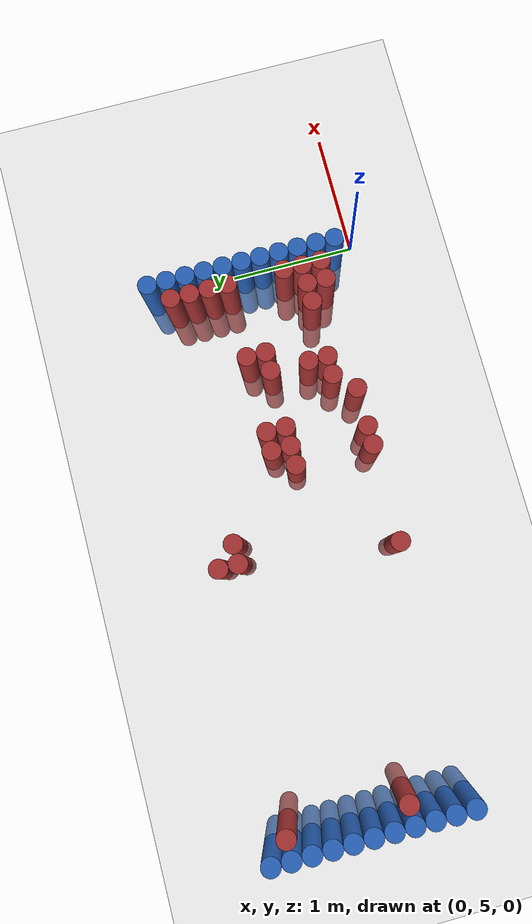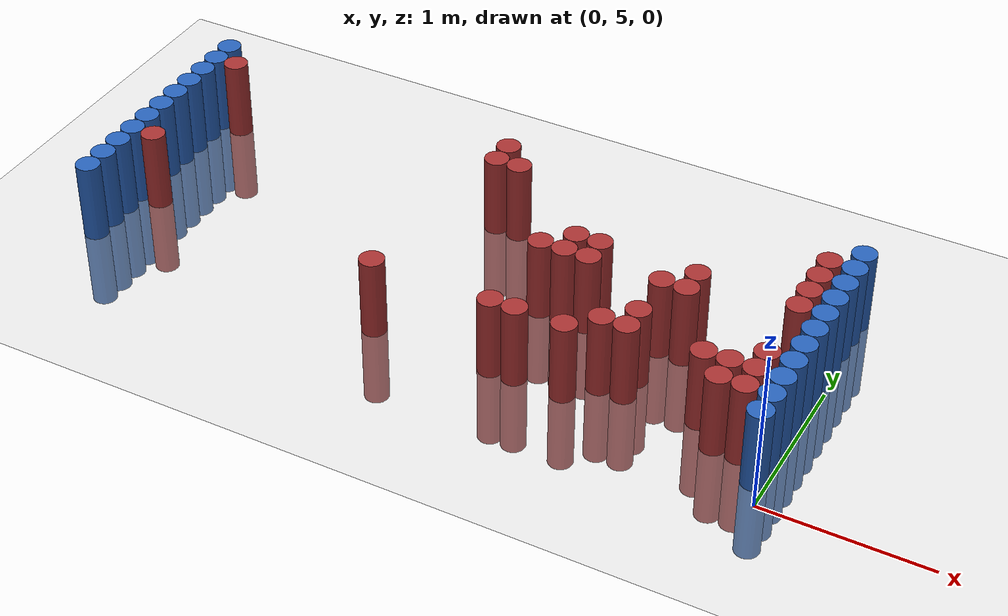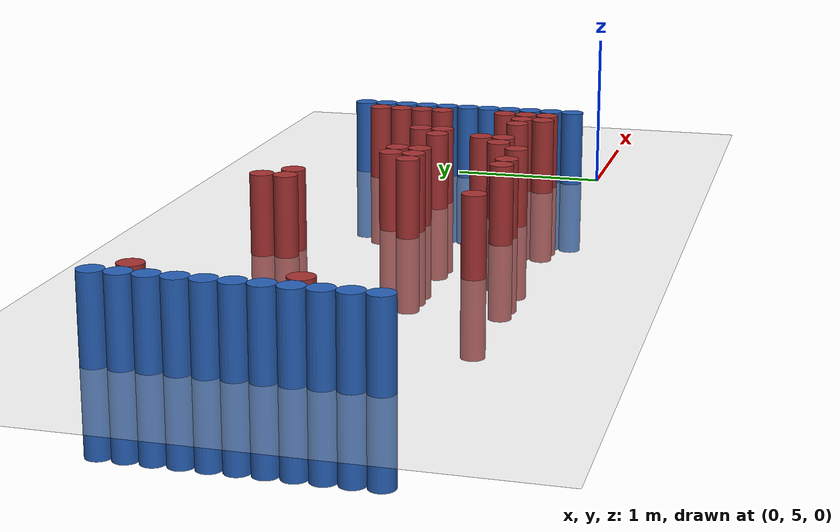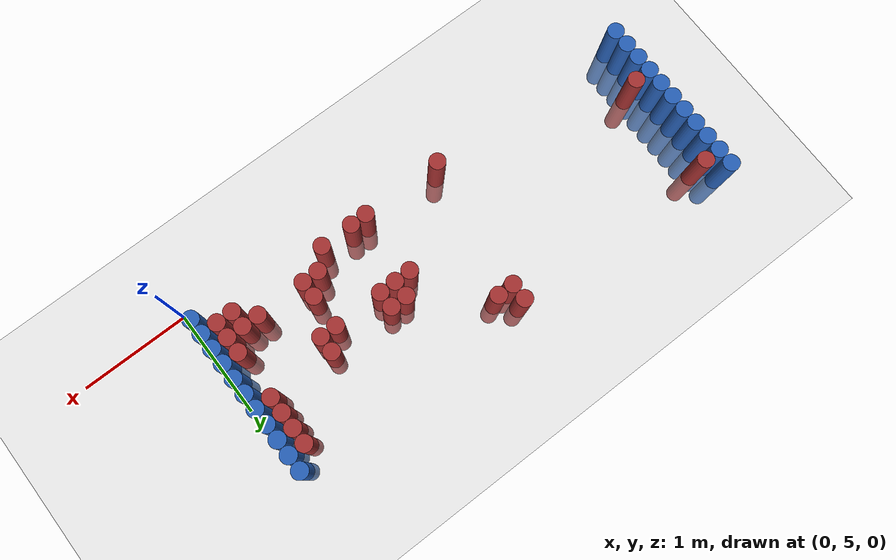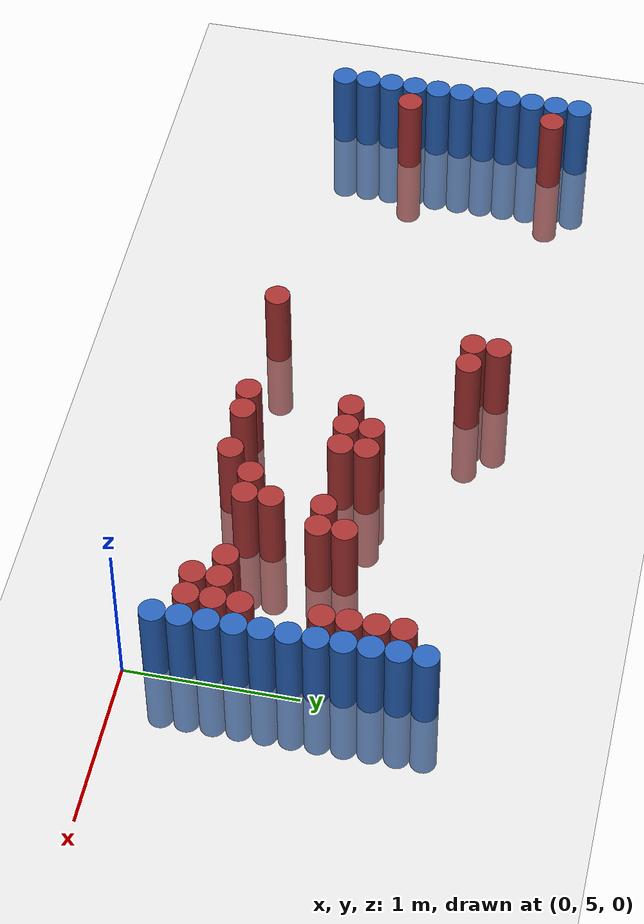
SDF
<sdf version="1.6">
 <world name="default">
  <model name="ground_plane">
   <static>1</static>
   <link name="link">
    <collision name="collision">
     <geometry><plane><normal>0 0 1</normal><size>100 100</size></plane></geometry>
     <surface><friction><ode><mu>100</mu><mu2>50</mu2></ode></friction></surface>
    </collision>
    <visual name="visual">
     <cast_shadows>0</cast_shadows>
     <geometry><plane><normal>0 0 1</normal><size>100 100</size></plane></geometry>
     <material>
      <script><uri>file://media/materials/scripts/gazebo.material</uri><name>Gazebo/Grey</name></script>
     </material>
    </visual>
   </link>
  </model>
  <model name="unit_cylinder_97">
   <static>1</static>
   <pose>-4.425000 5.325000 0.000000 0.000000 0.000000 0.000000</pose>
   <link name="link">
    <inertial>
     <mass>1</mass>
     <inertia><ixx>0.145833</ixx><ixy>0</ixy><ixz>0</ixz><iyy>0.145833</iyy><iyz>0</iyz><izz>0.125</izz></inertia>
    </inertial>
    <collision name="collision">
     <geometry><cylinder><radius>0.075000</radius><length>1</length></cylinder></geometry>
    </collision>
    <visual name="visual">
     <geometry><cylinder><radius>0.075000</radius><length>1</length></cylinder></geometry>
     <material>
      <ambient>0.152000 0.379000 0.720000 1</ambient>
      <diffuse>0.152000 0.379000 0.720000 1</diffuse>
     </material>
     <material>
      <script><name>Gazebo/Grey</name><uri>file://media/materials/scripts/gazebo.material</uri></script>
     </material>
    </visual>
   </link>
  </model>
  <model name="unit_cylinder_98">
   <static>1</static>
   <pose>-4.425000 5.475000 0.000000 0.000000 0.000000 0.000000</pose>
   <link name="link">
    <inertial>
     <mass>1</mass>
     <inertia><ixx>0.145833</ixx><ixy>0</ixy><ixz>0</ixz><iyy>0.145833</iyy><iyz>0</iyz><izz>0.125</izz></inertia>
    </inertial>
    <collision name="collision">
     <geometry><cylinder><radius>0.075000</radius><length>1</length></cylinder></geometry>
    </collision>
    <visual name="visual">
     <geometry><cylinder><radius>0.075000</radius><length>1</length></cylinder></geometry>
     <material>
      <ambient>0.152000 0.379000 0.720000 1</ambient>
      <diffuse>0.152000 0.379000 0.720000 1</diffuse>
     </material>
     <material>
      <script><name>Gazebo/Grey</name><uri>file://media/materials/scripts/gazebo.material</uri></script>
     </material>
    </visual>
   </link>
  </model>
  <model name="unit_cylinder_99">
   <static>1</static>
   <pose>-4.425000 5.625000 0.000000 0.000000 0.000000 0.000000</pose>
   <link name="link">
    <inertial>
     <mass>1</mass>
     <inertia><ixx>0.145833</ixx><ixy>0</ixy><ixz>0</ixz><iyy>0.145833</iyy><iyz>0</iyz><izz>0.125</izz></inertia>
    </inertial>
    <collision name="collision">
     <geometry><cylinder><radius>0.075000</radius><length>1</length></cylinder></geometry>
    </collision>
    <visual name="visual">
     <geometry><cylinder><radius>0.075000</radius><length>1</length></cylinder></geometry>
     <material>
      <ambient>0.152000 0.379000 0.720000 1</ambient>
      <diffuse>0.152000 0.379000 0.720000 1</diffuse>
     </material>
     <material>
      <script><name>Gazebo/Grey</name><uri>file://media/materials/scripts/gazebo.material</uri></script>
     </material>
    </visual>
   </link>
  </model>
  <model name="unit_cylinder_100">
   <static>1</static>
   <pose>-4.425000 5.775000 0.000000 0.000000 0.000000 0.000000</pose>
   <link name="link">
    <inertial>
     <mass>1</mass>
     <inertia><ixx>0.145833</ixx><ixy>0</ixy><ixz>0</ixz><iyy>0.145833</iyy><iyz>0</iyz><izz>0.125</izz></inertia>
    </inertial>
    <collision name="collision">
     <geometry><cylinder><radius>0.075000</radius><length>1</length></cylinder></geometry>
    </collision>
    <visual name="visual">
     <geometry><cylinder><radius>0.075000</radius><length>1</length></cylinder></geometry>
     <material>
      <ambient>0.152000 0.379000 0.720000 1</ambient>
      <diffuse>0.152000 0.379000 0.720000 1</diffuse>
     </material>
     <material>
      <script><name>Gazebo/Grey</name><uri>file://media/materials/scripts/gazebo.material</uri></script>
     </material>
    </visual>
   </link>
  </model>
  <model name="unit_cylinder_101">
   <static>1</static>
   <pose>-4.425000 5.925000 0.000000 0.000000 0.000000 0.000000</pose>
   <link name="link">
    <inertial>
     <mass>1</mass>
     <inertia><ixx>0.145833</ixx><ixy>0</ixy><ixz>0</ixz><iyy>0.145833</iyy><iyz>0</iyz><izz>0.125</izz></inertia>
    </inertial>
    <collision name="collision">
     <geometry><cylinder><radius>0.075000</radius><length>1</length></cylinder></geometry>
    </collision>
    <visual name="visual">
     <geometry><cylinder><radius>0.075000</radius><length>1</length></cylinder></geometry>
     <material>
      <ambient>0.152000 0.379000 0.720000 1</ambient>
      <diffuse>0.152000 0.379000 0.720000 1</diffuse>
     </material>
     <material>
      <script><name>Gazebo/Grey</name><uri>file://media/materials/scripts/gazebo.material</uri></script>
     </material>
    </visual>
   </link>
  </model>
  <model name="unit_cylinder_102">
   <static>1</static>
   <pose>-4.425000 6.075000 0.000000 0.000000 0.000000 0.000000</pose>
   <link name="link">
    <inertial>
     <mass>1</mass>
     <inertia><ixx>0.145833</ixx><ixy>0</ixy><ixz>0</ixz><iyy>0.145833</iyy><iyz>0</iyz><izz>0.125</izz></inertia>
    </inertial>
    <collision name="collision">
     <geometry><cylinder><radius>0.075000</radius><length>1</length></cylinder></geometry>
    </collision>
    <visual name="visual">
     <geometry><cylinder><radius>0.075000</radius><length>1</length></cylinder></geometry>
     <material>
      <ambient>0.152000 0.379000 0.720000 1</ambient>
      <diffuse>0.152000 0.379000 0.720000 1</diffuse>
     </material>
     <material>
      <script><name>Gazebo/Grey</name><uri>file://media/materials/scripts/gazebo.material</uri></script>
     </material>
    </visual>
   </link>
  </model>
  <model name="unit_cylinder_103">
   <static>1</static>
   <pose>-4.425000 6.225000 0.000000 0.000000 0.000000 0.000000</pose>
   <link name="link">
    <inertial>
     <mass>1</mass>
     <inertia><ixx>0.145833</ixx><ixy>0</ixy><ixz>0</ixz><iyy>0.145833</iyy><iyz>0</iyz><izz>0.125</izz></inertia>
    </inertial>
    <collision name="collision">
     <geometry><cylinder><radius>0.075000</radius><length>1</length></cylinder></geometry>
    </collision>
    <visual name="visual">
     <geometry><cylinder><radius>0.075000</radius><length>1</length></cylinder></geometry>
     <material>
      <ambient>0.152000 0.379000 0.720000 1</ambient>
      <diffuse>0.152000 0.379000 0.720000 1</diffuse>
     </material>
     <material>
      <script><name>Gazebo/Grey</name><uri>file://media/materials/scripts/gazebo.material</uri></script>
     </material>
    </visual>
   </link>
  </model>
  <model name="unit_cylinder_104">
   <static>1</static>
   <pose>-4.425000 6.375000 0.000000 0.000000 0.000000 0.000000</pose>
   <link name="link">
    <inertial>
     <mass>1</mass>
     <inertia><ixx>0.145833</ixx><ixy>0</ixy><ixz>0</ixz><iyy>0.145833</iyy><iyz>0</iyz><izz>0.125</izz></inertia>
    </inertial>
    <collision name="collision">
     <geometry><cylinder><radius>0.075000</radius><length>1</length></cylinder></geometry>
    </collision>
    <visual name="visual">
     <geometry><cylinder><radius>0.075000</radius><length>1</length></cylinder></geometry>
     <material>
      <ambient>0.152000 0.379000 0.720000 1</ambient>
      <diffuse>0.152000 0.379000 0.720000 1</diffuse>
     </material>
     <material>
      <script><name>Gazebo/Grey</name><uri>file://media/materials/scripts/gazebo.material</uri></script>
     </material>
    </visual>
   </link>
  </model>
  <model name="unit_cylinder_105">
   <static>1</static>
   <pose>-4.425000 6.525000 0.000000 0.000000 0.000000 0.000000</pose>
   <link name="link">
    <inertial>
     <mass>1</mass>
     <inertia><ixx>0.145833</ixx><ixy>0</ixy><ixz>0</ixz><iyy>0.145833</iyy><iyz>0</iyz><izz>0.125</izz></inertia>
    </inertial>
    <collision name="collision">
     <geometry><cylinder><radius>0.075000</radius><length>1</length></cylinder></geometry>
    </collision>
    <visual name="visual">
     <geometry><cylinder><radius>0.075000</radius><length>1</length></cylinder></geometry>
     <material>
      <ambient>0.152000 0.379000 0.720000 1</ambient>
      <diffuse>0.152000 0.379000 0.720000 1</diffuse>
     </material>
     <material>
      <script><name>Gazebo/Grey</name><uri>file://media/materials/scripts/gazebo.material</uri></script>
     </material>
    </visual>
   </link>
  </model>
  <model name="unit_cylinder_106">
   <static>1</static>
   <pose>-4.425000 6.675000 0.000000 0.000000 0.000000 0.000000</pose>
   <link name="link">
    <inertial>
     <mass>1</mass>
     <inertia><ixx>0.145833</ixx><ixy>0</ixy><ixz>0</ixz><iyy>0.145833</iyy><iyz>0</iyz><izz>0.125</izz></inertia>
    </inertial>
    <collision name="collision">
     <geometry><cylinder><radius>0.075000</radius><length>1</length></cylinder></geometry>
    </collision>
    <visual name="visual">
     <geometry><cylinder><radius>0.075000</radius><length>1</length></cylinder></geometry>
     <material>
      <ambient>0.152000 0.379000 0.720000 1</ambient>
      <diffuse>0.152000 0.379000 0.720000 1</diffuse>
     </material>
     <material>
      <script><name>Gazebo/Grey</name><uri>file://media/materials/scripts/gazebo.material</uri></script>
     </material>
    </visual>
   </link>
  </model>
  <model name="unit_cylinder_107">
   <static>1</static>
   <pose>-4.425000 6.825000 0.000000 0.000000 0.000000 0.000000</pose>
   <link name="link">
    <inertial>
     <mass>1</mass>
     <inertia><ixx>0.145833</ixx><ixy>0</ixy><ixz>0</ixz><iyy>0.145833</iyy><iyz>0</iyz><izz>0.125</izz></inertia>
    </inertial>
    <collision name="collision">
     <geometry><cylinder><radius>0.075000</radius><length>1</length></cylinder></geometry>
    </collision>
    <visual name="visual">
     <geometry><cylinder><radius>0.075000</radius><length>1</length></cylinder></geometry>
     <material>
      <ambient>0.152000 0.379000 0.720000 1</ambient>
      <diffuse>0.152000 0.379000 0.720000 1</diffuse>
     </material>
     <material>
      <script><name>Gazebo/Grey</name><uri>file://media/materials/scripts/gazebo.material</uri></script>
     </material>
    </visual>
   </link>
  </model>
  <model name="unit_cylinder_127">
   <static>1</static>
   <pose>-4.275000 5.775000 0.000000 0.000000 0.000000 0.000000</pose>
   <link name="link">
    <inertial>
     <mass>1</mass>
     <inertia><ixx>0.145833</ixx><ixy>0</ixy><ixz>0</ixz><iyy>0.145833</iyy><iyz>0</iyz><izz>0.125</izz></inertia>
    </inertial>
    <collision name="collision">
     <geometry><cylinder><radius>0.075000</radius><length>1</length></cylinder></geometry>
    </collision>
    <visual name="visual">
     <geometry><cylinder><radius>0.075000</radius><length>1</length></cylinder></geometry>
     <material>
      <ambient>0.648000 0.192000 0.192000 1</ambient>
      <diffuse>0.648000 0.192000 0.192000 1</diffuse>
     </material>
     <material>
      <script><name>Gazebo/Grey</name><uri>file://media/materials/scripts/gazebo.material</uri></script>
     </material>
    </visual>
   </link>
  </model>
  <model name="unit_cylinder_128">
   <static>1</static>
   <pose>-4.275000 6.675000 0.000000 0.000000 0.000000 0.000000</pose>
   <link name="link">
    <inertial>
     <mass>1</mass>
     <inertia><ixx>0.145833</ixx><ixy>0</ixy><ixz>0</ixz><iyy>0.145833</iyy><iyz>0</iyz><izz>0.125</izz></inertia>
    </inertial>
    <collision name="collision">
     <geometry><cylinder><radius>0.075000</radius><length>1</length></cylinder></geometry>
    </collision>
    <visual name="visual">
     <geometry><cylinder><radius>0.075000</radius><length>1</length></cylinder></geometry>
     <material>
      <ambient>0.648000 0.192000 0.192000 1</ambient>
      <diffuse>0.648000 0.192000 0.192000 1</diffuse>
     </material>
     <material>
      <script><name>Gazebo/Grey</name><uri>file://media/materials/scripts/gazebo.material</uri></script>
     </material>
    </visual>
   </link>
  </model>
  <model name="unit_cylinder_164">
   <static>1</static>
   <pose>-2.475000 5.325000 0.000000 0.000000 0.000000 0.000000</pose>
   <link name="link">
    <inertial>
     <mass>1</mass>
     <inertia><ixx>0.145833</ixx><ixy>0</ixy><ixz>0</ixz><iyy>0.145833</iyy><iyz>0</iyz><izz>0.125</izz></inertia>
    </inertial>
    <collision name="collision">
     <geometry><cylinder><radius>0.075000</radius><length>1</length></cylinder></geometry>
    </collision>
    <visual name="visual">
     <geometry><cylinder><radius>0.075000</radius><length>1</length></cylinder></geometry>
     <material>
      <ambient>0.648000 0.192000 0.192000 1</ambient>
      <diffuse>0.648000 0.192000 0.192000 1</diffuse>
     </material>
     <material>
      <script><name>Gazebo/Grey</name><uri>file://media/materials/scripts/gazebo.material</uri></script>
     </material>
    </visual>
   </link>
  </model>
  <model name="unit_cylinder_166">
   <static>1</static>
   <pose>-2.325000 6.525000 0.000000 0.000000 0.000000 0.000000</pose>
   <link name="link">
    <inertial>
     <mass>1</mass>
     <inertia><ixx>0.145833</ixx><ixy>0</ixy><ixz>0</ixz><iyy>0.145833</iyy><iyz>0</iyz><izz>0.125</izz></inertia>
    </inertial>
    <collision name="collision">
     <geometry><cylinder><radius>0.075000</radius><length>1</length></cylinder></geometry>
    </collision>
    <visual name="visual">
     <geometry><cylinder><radius>0.075000</radius><length>1</length></cylinder></geometry>
     <material>
      <ambient>0.648000 0.192000 0.192000 1</ambient>
      <diffuse>0.648000 0.192000 0.192000 1</diffuse>
     </material>
     <material>
      <script><name>Gazebo/Grey</name><uri>file://media/materials/scripts/gazebo.material</uri></script>
     </material>
    </visual>
   </link>
  </model>
  <model name="unit_cylinder_167">
   <static>1</static>
   <pose>-2.325000 6.675000 0.000000 0.000000 0.000000 0.000000</pose>
   <link name="link">
    <inertial>
     <mass>1</mass>
     <inertia><ixx>0.145833</ixx><ixy>0</ixy><ixz>0</ixz><iyy>0.145833</iyy><iyz>0</iyz><izz>0.125</izz></inertia>
    </inertial>
    <collision name="collision">
     <geometry><cylinder><radius>0.075000</radius><length>1</length></cylinder></geometry>
    </collision>
    <visual name="visual">
     <geometry><cylinder><radius>0.075000</radius><length>1</length></cylinder></geometry>
     <material>
      <ambient>0.648000 0.192000 0.192000 1</ambient>
      <diffuse>0.648000 0.192000 0.192000 1</diffuse>
     </material>
     <material>
      <script><name>Gazebo/Grey</name><uri>file://media/materials/scripts/gazebo.material</uri></script>
     </material>
    </visual>
   </link>
  </model>
  <model name="unit_cylinder_168">
   <static>1</static>
   <pose>-2.175000 6.525000 0.000000 0.000000 0.000000 0.000000</pose>
   <link name="link">
    <inertial>
     <mass>1</mass>
     <inertia><ixx>0.145833</ixx><ixy>0</ixy><ixz>0</ixz><iyy>0.145833</iyy><iyz>0</iyz><izz>0.125</izz></inertia>
    </inertial>
    <collision name="collision">
     <geometry><cylinder><radius>0.075000</radius><length>1</length></cylinder></geometry>
    </collision>
    <visual name="visual">
     <geometry><cylinder><radius>0.075000</radius><length>1</length></cylinder></geometry>
     <material>
      <ambient>0.648000 0.192000 0.192000 1</ambient>
      <diffuse>0.648000 0.192000 0.192000 1</diffuse>
     </material>
     <material>
      <script><name>Gazebo/Grey</name><uri>file://media/materials/scripts/gazebo.material</uri></script>
     </material>
    </visual>
   </link>
  </model>
  <model name="unit_cylinder_176">
   <static>1</static>
   <pose>-1.725000 5.325000 0.000000 0.000000 0.000000 0.000000</pose>
   <link name="link">
    <inertial>
     <mass>1</mass>
     <inertia><ixx>0.145833</ixx><ixy>0</ixy><ixz>0</ixz><iyy>0.145833</iyy><iyz>0</iyz><izz>0.125</izz></inertia>
    </inertial>
    <collision name="collision">
     <geometry><cylinder><radius>0.075000</radius><length>1</length></cylinder></geometry>
    </collision>
    <visual name="visual">
     <geometry><cylinder><radius>0.075000</radius><length>1</length></cylinder></geometry>
     <material>
      <ambient>0.648000 0.192000 0.192000 1</ambient>
      <diffuse>0.648000 0.192000 0.192000 1</diffuse>
     </material>
     <material>
      <script><name>Gazebo/Grey</name><uri>file://media/materials/scripts/gazebo.material</uri></script>
     </material>
    </visual>
   </link>
  </model>
  <model name="unit_cylinder_177">
   <static>1</static>
   <pose>-1.725000 5.925000 0.000000 0.000000 0.000000 0.000000</pose>
   <link name="link">
    <inertial>
     <mass>1</mass>
     <inertia><ixx>0.145833</ixx><ixy>0</ixy><ixz>0</ixz><iyy>0.145833</iyy><iyz>0</iyz><izz>0.125</izz></inertia>
    </inertial>
    <collision name="collision">
     <geometry><cylinder><radius>0.075000</radius><length>1</length></cylinder></geometry>
    </collision>
    <visual name="visual">
     <geometry><cylinder><radius>0.075000</radius><length>1</length></cylinder></geometry>
     <material>
      <ambient>0.648000 0.192000 0.192000 1</ambient>
      <diffuse>0.648000 0.192000 0.192000 1</diffuse>
     </material>
     <material>
      <script><name>Gazebo/Grey</name><uri>file://media/materials/scripts/gazebo.material</uri></script>
     </material>
    </visual>
   </link>
  </model>
  <model name="unit_cylinder_181">
   <static>1</static>
   <pose>-1.575000 5.325000 0.000000 0.000000 0.000000 0.000000</pose>
   <link name="link">
    <inertial>
     <mass>1</mass>
     <inertia><ixx>0.145833</ixx><ixy>0</ixy><ixz>0</ixz><iyy>0.145833</iyy><iyz>0</iyz><izz>0.125</izz></inertia>
    </inertial>
    <collision name="collision">
     <geometry><cylinder><radius>0.075000</radius><length>1</length></cylinder></geometry>
    </collision>
    <visual name="visual">
     <geometry><cylinder><radius>0.075000</radius><length>1</length></cylinder></geometry>
     <material>
      <ambient>0.648000 0.192000 0.192000 1</ambient>
      <diffuse>0.648000 0.192000 0.192000 1</diffuse>
     </material>
     <material>
      <script><name>Gazebo/Grey</name><uri>file://media/materials/scripts/gazebo.material</uri></script>
     </material>
    </visual>
   </link>
  </model>
  <model name="unit_cylinder_182">
   <static>1</static>
   <pose>-1.575000 5.925000 0.000000 0.000000 0.000000 0.000000</pose>
   <link name="link">
    <inertial>
     <mass>1</mass>
     <inertia><ixx>0.145833</ixx><ixy>0</ixy><ixz>0</ixz><iyy>0.145833</iyy><iyz>0</iyz><izz>0.125</izz></inertia>
    </inertial>
    <collision name="collision">
     <geometry><cylinder><radius>0.075000</radius><length>1</length></cylinder></geometry>
    </collision>
    <visual name="visual">
     <geometry><cylinder><radius>0.075000</radius><length>1</length></cylinder></geometry>
     <material>
      <ambient>0.648000 0.192000 0.192000 1</ambient>
      <diffuse>0.648000 0.192000 0.192000 1</diffuse>
     </material>
     <material>
      <script><name>Gazebo/Grey</name><uri>file://media/materials/scripts/gazebo.material</uri></script>
     </material>
    </visual>
   </link>
  </model>
  <model name="unit_cylinder_183">
   <static>1</static>
   <pose>-1.575000 6.075000 0.000000 0.000000 0.000000 0.000000</pose>
   <link name="link">
    <inertial>
     <mass>1</mass>
     <inertia><ixx>0.145833</ixx><ixy>0</ixy><ixz>0</ixz><iyy>0.145833</iyy><iyz>0</iyz><izz>0.125</izz></inertia>
    </inertial>
    <collision name="collision">
     <geometry><cylinder><radius>0.075000</radius><length>1</length></cylinder></geometry>
    </collision>
    <visual name="visual">
     <geometry><cylinder><radius>0.075000</radius><length>1</length></cylinder></geometry>
     <material>
      <ambient>0.648000 0.192000 0.192000 1</ambient>
      <diffuse>0.648000 0.192000 0.192000 1</diffuse>
     </material>
     <material>
      <script><name>Gazebo/Grey</name><uri>file://media/materials/scripts/gazebo.material</uri></script>
     </material>
    </visual>
   </link>
  </model>
  <model name="unit_cylinder_188">
   <static>1</static>
   <pose>-1.425000 5.925000 0.000000 0.000000 0.000000 0.000000</pose>
   <link name="link">
    <inertial>
     <mass>1</mass>
     <inertia><ixx>0.145833</ixx><ixy>0</ixy><ixz>0</ixz><iyy>0.145833</iyy><iyz>0</iyz><izz>0.125</izz></inertia>
    </inertial>
    <collision name="collision">
     <geometry><cylinder><radius>0.075000</radius><length>1</length></cylinder></geometry>
    </collision>
    <visual name="visual">
     <geometry><cylinder><radius>0.075000</radius><length>1</length></cylinder></geometry>
     <material>
      <ambient>0.648000 0.192000 0.192000 1</ambient>
      <diffuse>0.648000 0.192000 0.192000 1</diffuse>
     </material>
     <material>
      <script><name>Gazebo/Grey</name><uri>file://media/materials/scripts/gazebo.material</uri></script>
     </material>
    </visual>
   </link>
  </model>
  <model name="unit_cylinder_189">
   <static>1</static>
   <pose>-1.425000 6.075000 0.000000 0.000000 0.000000 0.000000</pose>
   <link name="link">
    <inertial>
     <mass>1</mass>
     <inertia><ixx>0.145833</ixx><ixy>0</ixy><ixz>0</ixz><iyy>0.145833</iyy><iyz>0</iyz><izz>0.125</izz></inertia>
    </inertial>
    <collision name="collision">
     <geometry><cylinder><radius>0.075000</radius><length>1</length></cylinder></geometry>
    </collision>
    <visual name="visual">
     <geometry><cylinder><radius>0.075000</radius><length>1</length></cylinder></geometry>
     <material>
      <ambient>0.648000 0.192000 0.192000 1</ambient>
      <diffuse>0.648000 0.192000 0.192000 1</diffuse>
     </material>
     <material>
      <script><name>Gazebo/Grey</name><uri>file://media/materials/scripts/gazebo.material</uri></script>
     </material>
    </visual>
   </link>
  </model>
  <model name="unit_cylinder_192">
   <static>1</static>
   <pose>-1.275000 5.325000 0.000000 0.000000 0.000000 0.000000</pose>
   <link name="link">
    <inertial>
     <mass>1</mass>
     <inertia><ixx>0.145833</ixx><ixy>0</ixy><ixz>0</ixz><iyy>0.145833</iyy><iyz>0</iyz><izz>0.125</izz></inertia>
    </inertial>
    <collision name="collision">
     <geometry><cylinder><radius>0.075000</radius><length>1</length></cylinder></geometry>
    </collision>
    <visual name="visual">
     <geometry><cylinder><radius>0.075000</radius><length>1</length></cylinder></geometry>
     <material>
      <ambient>0.648000 0.192000 0.192000 1</ambient>
      <diffuse>0.648000 0.192000 0.192000 1</diffuse>
     </material>
     <material>
      <script><name>Gazebo/Grey</name><uri>file://media/materials/scripts/gazebo.material</uri></script>
     </material>
    </visual>
   </link>
  </model>
  <model name="unit_cylinder_195">
   <static>1</static>
   <pose>-1.125000 5.475000 0.000000 0.000000 0.000000 0.000000</pose>
   <link name="link">
    <inertial>
     <mass>1</mass>
     <inertia><ixx>0.145833</ixx><ixy>0</ixy><ixz>0</ixz><iyy>0.145833</iyy><iyz>0</iyz><izz>0.125</izz></inertia>
    </inertial>
    <collision name="collision">
     <geometry><cylinder><radius>0.075000</radius><length>1</length></cylinder></geometry>
    </collision>
    <visual name="visual">
     <geometry><cylinder><radius>0.075000</radius><length>1</length></cylinder></geometry>
     <material>
      <ambient>0.648000 0.192000 0.192000 1</ambient>
      <diffuse>0.648000 0.192000 0.192000 1</diffuse>
     </material>
     <material>
      <script><name>Gazebo/Grey</name><uri>file://media/materials/scripts/gazebo.material</uri></script>
     </material>
    </visual>
   </link>
  </model>
  <model name="unit_cylinder_197">
   <static>1</static>
   <pose>-0.975000 5.475000 0.000000 0.000000 0.000000 0.000000</pose>
   <link name="link">
    <inertial>
     <mass>1</mass>
     <inertia><ixx>0.145833</ixx><ixy>0</ixy><ixz>0</ixz><iyy>0.145833</iyy><iyz>0</iyz><izz>0.125</izz></inertia>
    </inertial>
    <collision name="collision">
     <geometry><cylinder><radius>0.075000</radius><length>1</length></cylinder></geometry>
    </collision>
    <visual name="visual">
     <geometry><cylinder><radius>0.075000</radius><length>1</length></cylinder></geometry>
     <material>
      <ambient>0.648000 0.192000 0.192000 1</ambient>
      <diffuse>0.648000 0.192000 0.192000 1</diffuse>
     </material>
     <material>
      <script><name>Gazebo/Grey</name><uri>file://media/materials/scripts/gazebo.material</uri></script>
     </material>
    </visual>
   </link>
  </model>
  <model name="unit_cylinder_198">
   <static>1</static>
   <pose>-0.975000 5.625000 0.000000 0.000000 0.000000 0.000000</pose>
   <link name="link">
    <inertial>
     <mass>1</mass>
     <inertia><ixx>0.145833</ixx><ixy>0</ixy><ixz>0</ixz><iyy>0.145833</iyy><iyz>0</iyz><izz>0.125</izz></inertia>
    </inertial>
    <collision name="collision">
     <geometry><cylinder><radius>0.075000</radius><length>1</length></cylinder></geometry>
    </collision>
    <visual name="visual">
     <geometry><cylinder><radius>0.075000</radius><length>1</length></cylinder></geometry>
     <material>
      <ambient>0.648000 0.192000 0.192000 1</ambient>
      <diffuse>0.648000 0.192000 0.192000 1</diffuse>
     </material>
     <material>
      <script><name>Gazebo/Grey</name><uri>file://media/materials/scripts/gazebo.material</uri></script>
     </material>
    </visual>
   </link>
  </model>
  <model name="unit_cylinder_199">
   <static>1</static>
   <pose>-0.975000 5.925000 0.000000 0.000000 0.000000 0.000000</pose>
   <link name="link">
    <inertial>
     <mass>1</mass>
     <inertia><ixx>0.145833</ixx><ixy>0</ixy><ixz>0</ixz><iyy>0.145833</iyy><iyz>0</iyz><izz>0.125</izz></inertia>
    </inertial>
    <collision name="collision">
     <geometry><cylinder><radius>0.075000</radius><length>1</length></cylinder></geometry>
    </collision>
    <visual name="visual">
     <geometry><cylinder><radius>0.075000</radius><length>1</length></cylinder></geometry>
     <material>
      <ambient>0.648000 0.192000 0.192000 1</ambient>
      <diffuse>0.648000 0.192000 0.192000 1</diffuse>
     </material>
     <material>
      <script><name>Gazebo/Grey</name><uri>file://media/materials/scripts/gazebo.material</uri></script>
     </material>
    </visual>
   </link>
  </model>
  <model name="unit_cylinder_200">
   <static>1</static>
   <pose>-0.825000 5.925000 0.000000 0.000000 0.000000 0.000000</pose>
   <link name="link">
    <inertial>
     <mass>1</mass>
     <inertia><ixx>0.145833</ixx><ixy>0</ixy><ixz>0</ixz><iyy>0.145833</iyy><iyz>0</iyz><izz>0.125</izz></inertia>
    </inertial>
    <collision name="collision">
     <geometry><cylinder><radius>0.075000</radius><length>1</length></cylinder></geometry>
    </collision>
    <visual name="visual">
     <geometry><cylinder><radius>0.075000</radius><length>1</length></cylinder></geometry>
     <material>
      <ambient>0.648000 0.192000 0.192000 1</ambient>
      <diffuse>0.648000 0.192000 0.192000 1</diffuse>
     </material>
     <material>
      <script><name>Gazebo/Grey</name><uri>file://media/materials/scripts/gazebo.material</uri></script>
     </material>
    </visual>
   </link>
  </model>
  <model name="unit_cylinder_201">
   <static>1</static>
   <pose>-0.825000 6.075000 0.000000 0.000000 0.000000 0.000000</pose>
   <link name="link">
    <inertial>
     <mass>1</mass>
     <inertia><ixx>0.145833</ixx><ixy>0</ixy><ixz>0</ixz><iyy>0.145833</iyy><iyz>0</iyz><izz>0.125</izz></inertia>
    </inertial>
    <collision name="collision">
     <geometry><cylinder><radius>0.075000</radius><length>1</length></cylinder></geometry>
    </collision>
    <visual name="visual">
     <geometry><cylinder><radius>0.075000</radius><length>1</length></cylinder></geometry>
     <material>
      <ambient>0.648000 0.192000 0.192000 1</ambient>
      <diffuse>0.648000 0.192000 0.192000 1</diffuse>
     </material>
     <material>
      <script><name>Gazebo/Grey</name><uri>file://media/materials/scripts/gazebo.material</uri></script>
     </material>
    </visual>
   </link>
  </model>
  <model name="unit_cylinder_205">
   <static>1</static>
   <pose>-0.525000 5.475000 0.000000 0.000000 0.000000 0.000000</pose>
   <link name="link">
    <inertial>
     <mass>1</mass>
     <inertia><ixx>0.145833</ixx><ixy>0</ixy><ixz>0</ixz><iyy>0.145833</iyy><iyz>0</iyz><izz>0.125</izz></inertia>
    </inertial>
    <collision name="collision">
     <geometry><cylinder><radius>0.075000</radius><length>1</length></cylinder></geometry>
    </collision>
    <visual name="visual">
     <geometry><cylinder><radius>0.075000</radius><length>1</length></cylinder></geometry>
     <material>
      <ambient>0.648000 0.192000 0.192000 1</ambient>
      <diffuse>0.648000 0.192000 0.192000 1</diffuse>
     </material>
     <material>
      <script><name>Gazebo/Grey</name><uri>file://media/materials/scripts/gazebo.material</uri></script>
     </material>
    </visual>
   </link>
  </model>
  <model name="unit_cylinder_207">
   <static>1</static>
   <pose>-0.375000 5.325000 0.000000 0.000000 0.000000 0.000000</pose>
   <link name="link">
    <inertial>
     <mass>1</mass>
     <inertia><ixx>0.145833</ixx><ixy>0</ixy><ixz>0</ixz><iyy>0.145833</iyy><iyz>0</iyz><izz>0.125</izz></inertia>
    </inertial>
    <collision name="collision">
     <geometry><cylinder><radius>0.075000</radius><length>1</length></cylinder></geometry>
    </collision>
    <visual name="visual">
     <geometry><cylinder><radius>0.075000</radius><length>1</length></cylinder></geometry>
     <material>
      <ambient>0.648000 0.192000 0.192000 1</ambient>
      <diffuse>0.648000 0.192000 0.192000 1</diffuse>
     </material>
     <material>
      <script><name>Gazebo/Grey</name><uri>file://media/materials/scripts/gazebo.material</uri></script>
     </material>
    </visual>
   </link>
  </model>
  <model name="unit_cylinder_208">
   <static>1</static>
   <pose>-0.375000 5.475000 0.000000 0.000000 0.000000 0.000000</pose>
   <link name="link">
    <inertial>
     <mass>1</mass>
     <inertia><ixx>0.145833</ixx><ixy>0</ixy><ixz>0</ixz><iyy>0.145833</iyy><iyz>0</iyz><izz>0.125</izz></inertia>
    </inertial>
    <collision name="collision">
     <geometry><cylinder><radius>0.075000</radius><length>1</length></cylinder></geometry>
    </collision>
    <visual name="visual">
     <geometry><cylinder><radius>0.075000</radius><length>1</length></cylinder></geometry>
     <material>
      <ambient>0.648000 0.192000 0.192000 1</ambient>
      <diffuse>0.648000 0.192000 0.192000 1</diffuse>
     </material>
     <material>
      <script><name>Gazebo/Grey</name><uri>file://media/materials/scripts/gazebo.material</uri></script>
     </material>
    </visual>
   </link>
  </model>
  <model name="unit_cylinder_213">
   <static>1</static>
   <pose>-0.225000 5.325000 0.000000 0.000000 0.000000 0.000000</pose>
   <link name="link">
    <inertial>
     <mass>1</mass>
     <inertia><ixx>0.145833</ixx><ixy>0</ixy><ixz>0</ixz><iyy>0.145833</iyy><iyz>0</iyz><izz>0.125</izz></inertia>
    </inertial>
    <collision name="collision">
     <geometry><cylinder><radius>0.075000</radius><length>1</length></cylinder></geometry>
    </collision>
    <visual name="visual">
     <geometry><cylinder><radius>0.075000</radius><length>1</length></cylinder></geometry>
     <material>
      <ambient>0.648000 0.192000 0.192000 1</ambient>
      <diffuse>0.648000 0.192000 0.192000 1</diffuse>
     </material>
     <material>
      <script><name>Gazebo/Grey</name><uri>file://media/materials/scripts/gazebo.material</uri></script>
     </material>
    </visual>
   </link>
  </model>
  <model name="unit_cylinder_214">
   <static>1</static>
   <pose>-0.225000 5.475000 0.000000 0.000000 0.000000 0.000000</pose>
   <link name="link">
    <inertial>
     <mass>1</mass>
     <inertia><ixx>0.145833</ixx><ixy>0</ixy><ixz>0</ixz><iyy>0.145833</iyy><iyz>0</iyz><izz>0.125</izz></inertia>
    </inertial>
    <collision name="collision">
     <geometry><cylinder><radius>0.075000</radius><length>1</length></cylinder></geometry>
    </collision>
    <visual name="visual">
     <geometry><cylinder><radius>0.075000</radius><length>1</length></cylinder></geometry>
     <material>
      <ambient>0.648000 0.192000 0.192000 1</ambient>
      <diffuse>0.648000 0.192000 0.192000 1</diffuse>
     </material>
     <material>
      <script><name>Gazebo/Grey</name><uri>file://media/materials/scripts/gazebo.material</uri></script>
     </material>
    </visual>
   </link>
  </model>
  <model name="unit_cylinder_215">
   <static>1</static>
   <pose>-0.225000 5.625000 0.000000 0.000000 0.000000 0.000000</pose>
   <link name="link">
    <inertial>
     <mass>1</mass>
     <inertia><ixx>0.145833</ixx><ixy>0</ixy><ixz>0</ixz><iyy>0.145833</iyy><iyz>0</iyz><izz>0.125</izz></inertia>
    </inertial>
    <collision name="collision">
     <geometry><cylinder><radius>0.075000</radius><length>1</length></cylinder></geometry>
    </collision>
    <visual name="visual">
     <geometry><cylinder><radius>0.075000</radius><length>1</length></cylinder></geometry>
     <material>
      <ambient>0.648000 0.192000 0.192000 1</ambient>
      <diffuse>0.648000 0.192000 0.192000 1</diffuse>
     </material>
     <material>
      <script><name>Gazebo/Grey</name><uri>file://media/materials/scripts/gazebo.material</uri></script>
     </material>
    </visual>
   </link>
  </model>
  <model name="unit_cylinder_216">
   <static>1</static>
   <pose>-0.225000 6.075000 0.000000 0.000000 0.000000 0.000000</pose>
   <link name="link">
    <inertial>
     <mass>1</mass>
     <inertia><ixx>0.145833</ixx><ixy>0</ixy><ixz>0</ixz><iyy>0.145833</iyy><iyz>0</iyz><izz>0.125</izz></inertia>
    </inertial>
    <collision name="collision">
     <geometry><cylinder><radius>0.075000</radius><length>1</length></cylinder></geometry>
    </collision>
    <visual name="visual">
     <geometry><cylinder><radius>0.075000</radius><length>1</length></cylinder></geometry>
     <material>
      <ambient>0.648000 0.192000 0.192000 1</ambient>
      <diffuse>0.648000 0.192000 0.192000 1</diffuse>
     </material>
     <material>
      <script><name>Gazebo/Grey</name><uri>file://media/materials/scripts/gazebo.material</uri></script>
     </material>
    </visual>
   </link>
  </model>
  <model name="unit_cylinder_217">
   <static>1</static>
   <pose>-0.225000 6.225000 0.000000 0.000000 0.000000 0.000000</pose>
   <link name="link">
    <inertial>
     <mass>1</mass>
     <inertia><ixx>0.145833</ixx><ixy>0</ixy><ixz>0</ixz><iyy>0.145833</iyy><iyz>0</iyz><izz>0.125</izz></inertia>
    </inertial>
    <collision name="collision">
     <geometry><cylinder><radius>0.075000</radius><length>1</length></cylinder></geometry>
    </collision>
    <visual name="visual">
     <geometry><cylinder><radius>0.075000</radius><length>1</length></cylinder></geometry>
     <material>
      <ambient>0.648000 0.192000 0.192000 1</ambient>
      <diffuse>0.648000 0.192000 0.192000 1</diffuse>
     </material>
     <material>
      <script><name>Gazebo/Grey</name><uri>file://media/materials/scripts/gazebo.material</uri></script>
     </material>
    </visual>
   </link>
  </model>
  <model name="unit_cylinder_218">
   <static>1</static>
   <pose>-0.225000 6.375000 0.000000 0.000000 0.000000 0.000000</pose>
   <link name="link">
    <inertial>
     <mass>1</mass>
     <inertia><ixx>0.145833</ixx><ixy>0</ixy><ixz>0</ixz><iyy>0.145833</iyy><iyz>0</iyz><izz>0.125</izz></inertia>
    </inertial>
    <collision name="collision">
     <geometry><cylinder><radius>0.075000</radius><length>1</length></cylinder></geometry>
    </collision>
    <visual name="visual">
     <geometry><cylinder><radius>0.075000</radius><length>1</length></cylinder></geometry>
     <material>
      <ambient>0.648000 0.192000 0.192000 1</ambient>
      <diffuse>0.648000 0.192000 0.192000 1</diffuse>
     </material>
     <material>
      <script><name>Gazebo/Grey</name><uri>file://media/materials/scripts/gazebo.material</uri></script>
     </material>
    </visual>
   </link>
  </model>
  <model name="unit_cylinder_219">
   <static>1</static>
   <pose>-0.225000 6.525000 0.000000 0.000000 0.000000 0.000000</pose>
   <link name="link">
    <inertial>
     <mass>1</mass>
     <inertia><ixx>0.145833</ixx><ixy>0</ixy><ixz>0</ixz><iyy>0.145833</iyy><iyz>0</iyz><izz>0.125</izz></inertia>
    </inertial>
    <collision name="collision">
     <geometry><cylinder><radius>0.075000</radius><length>1</length></cylinder></geometry>
    </collision>
    <visual name="visual">
     <geometry><cylinder><radius>0.075000</radius><length>1</length></cylinder></geometry>
     <material>
      <ambient>0.648000 0.192000 0.192000 1</ambient>
      <diffuse>0.648000 0.192000 0.192000 1</diffuse>
     </material>
     <material>
      <script><name>Gazebo/Grey</name><uri>file://media/materials/scripts/gazebo.material</uri></script>
     </material>
    </visual>
   </link>
  </model>
  <model name="unit_cylinder_231">
   <static>1</static>
   <pose>-0.075000 5.175000 0.000000 0.000000 0.000000 0.000000</pose>
   <link name="link">
    <inertial>
     <mass>1</mass>
     <inertia><ixx>0.145833</ixx><ixy>0</ixy><ixz>0</ixz><iyy>0.145833</iyy><iyz>0</iyz><izz>0.125</izz></inertia>
    </inertial>
    <collision name="collision">
     <geometry><cylinder><radius>0.075000</radius><length>1</length></cylinder></geometry>
    </collision>
    <visual name="visual">
     <geometry><cylinder><radius>0.075000</radius><length>1</length></cylinder></geometry>
     <material>
      <ambient>0.152000 0.379000 0.720000 1</ambient>
      <diffuse>0.152000 0.379000 0.720000 1</diffuse>
     </material>
     <material>
      <script><name>Gazebo/Grey</name><uri>file://media/materials/scripts/gazebo.material</uri></script>
     </material>
    </visual>
   </link>
  </model>
  <model name="unit_cylinder_232">
   <static>1</static>
   <pose>-0.075000 5.325000 0.000000 0.000000 0.000000 0.000000</pose>
   <link name="link">
    <inertial>
     <mass>1</mass>
     <inertia><ixx>0.145833</ixx><ixy>0</ixy><ixz>0</ixz><iyy>0.145833</iyy><iyz>0</iyz><izz>0.125</izz></inertia>
    </inertial>
    <collision name="collision">
     <geometry><cylinder><radius>0.075000</radius><length>1</length></cylinder></geometry>
    </collision>
    <visual name="visual">
     <geometry><cylinder><radius>0.075000</radius><length>1</length></cylinder></geometry>
     <material>
      <ambient>0.152000 0.379000 0.720000 1</ambient>
      <diffuse>0.152000 0.379000 0.720000 1</diffuse>
     </material>
     <material>
      <script><name>Gazebo/Grey</name><uri>file://media/materials/scripts/gazebo.material</uri></script>
     </material>
    </visual>
   </link>
  </model>
  <model name="unit_cylinder_233">
   <static>1</static>
   <pose>-0.075000 5.475000 0.000000 0.000000 0.000000 0.000000</pose>
   <link name="link">
    <inertial>
     <mass>1</mass>
     <inertia><ixx>0.145833</ixx><ixy>0</ixy><ixz>0</ixz><iyy>0.145833</iyy><iyz>0</iyz><izz>0.125</izz></inertia>
    </inertial>
    <collision name="collision">
     <geometry><cylinder><radius>0.075000</radius><length>1</length></cylinder></geometry>
    </collision>
    <visual name="visual">
     <geometry><cylinder><radius>0.075000</radius><length>1</length></cylinder></geometry>
     <material>
      <ambient>0.152000 0.379000 0.720000 1</ambient>
      <diffuse>0.152000 0.379000 0.720000 1</diffuse>
     </material>
     <material>
      <script><name>Gazebo/Grey</name><uri>file://media/materials/scripts/gazebo.material</uri></script>
     </material>
    </visual>
   </link>
  </model>
  <model name="unit_cylinder_234">
   <static>1</static>
   <pose>-0.075000 5.625000 0.000000 0.000000 0.000000 0.000000</pose>
   <link name="link">
    <inertial>
     <mass>1</mass>
     <inertia><ixx>0.145833</ixx><ixy>0</ixy><ixz>0</ixz><iyy>0.145833</iyy><iyz>0</iyz><izz>0.125</izz></inertia>
    </inertial>
    <collision name="collision">
     <geometry><cylinder><radius>0.075000</radius><length>1</length></cylinder></geometry>
    </collision>
    <visual name="visual">
     <geometry><cylinder><radius>0.075000</radius><length>1</length></cylinder></geometry>
     <material>
      <ambient>0.152000 0.379000 0.720000 1</ambient>
      <diffuse>0.152000 0.379000 0.720000 1</diffuse>
     </material>
     <material>
      <script><name>Gazebo/Grey</name><uri>file://media/materials/scripts/gazebo.material</uri></script>
     </material>
    </visual>
   </link>
  </model>
  <model name="unit_cylinder_235">
   <static>1</static>
   <pose>-0.075000 5.775000 0.000000 0.000000 0.000000 0.000000</pose>
   <link name="link">
    <inertial>
     <mass>1</mass>
     <inertia><ixx>0.145833</ixx><ixy>0</ixy><ixz>0</ixz><iyy>0.145833</iyy><iyz>0</iyz><izz>0.125</izz></inertia>
    </inertial>
    <collision name="collision">
     <geometry><cylinder><radius>0.075000</radius><length>1</length></cylinder></geometry>
    </collision>
    <visual name="visual">
     <geometry><cylinder><radius>0.075000</radius><length>1</length></cylinder></geometry>
     <material>
      <ambient>0.152000 0.379000 0.720000 1</ambient>
      <diffuse>0.152000 0.379000 0.720000 1</diffuse>
     </material>
     <material>
      <script><name>Gazebo/Grey</name><uri>file://media/materials/scripts/gazebo.material</uri></script>
     </material>
    </visual>
   </link>
  </model>
  <model name="unit_cylinder_236">
   <static>1</static>
   <pose>-0.075000 5.925000 0.000000 0.000000 0.000000 0.000000</pose>
   <link name="link">
    <inertial>
     <mass>1</mass>
     <inertia><ixx>0.145833</ixx><ixy>0</ixy><ixz>0</ixz><iyy>0.145833</iyy><iyz>0</iyz><izz>0.125</izz></inertia>
    </inertial>
    <collision name="collision">
     <geometry><cylinder><radius>0.075000</radius><length>1</length></cylinder></geometry>
    </collision>
    <visual name="visual">
     <geometry><cylinder><radius>0.075000</radius><length>1</length></cylinder></geometry>
     <material>
      <ambient>0.152000 0.379000 0.720000 1</ambient>
      <diffuse>0.152000 0.379000 0.720000 1</diffuse>
     </material>
     <material>
      <script><name>Gazebo/Grey</name><uri>file://media/materials/scripts/gazebo.material</uri></script>
     </material>
    </visual>
   </link>
  </model>
  <model name="unit_cylinder_237">
   <static>1</static>
   <pose>-0.075000 6.075000 0.000000 0.000000 0.000000 0.000000</pose>
   <link name="link">
    <inertial>
     <mass>1</mass>
     <inertia><ixx>0.145833</ixx><ixy>0</ixy><ixz>0</ixz><iyy>0.145833</iyy><iyz>0</iyz><izz>0.125</izz></inertia>
    </inertial>
    <collision name="collision">
     <geometry><cylinder><radius>0.075000</radius><length>1</length></cylinder></geometry>
    </collision>
    <visual name="visual">
     <geometry><cylinder><radius>0.075000</radius><length>1</length></cylinder></geometry>
     <material>
      <ambient>0.152000 0.379000 0.720000 1</ambient>
      <diffuse>0.152000 0.379000 0.720000 1</diffuse>
     </material>
     <material>
      <script><name>Gazebo/Grey</name><uri>file://media/materials/scripts/gazebo.material</uri></script>
     </material>
    </visual>
   </link>
  </model>
  <model name="unit_cylinder_238">
   <static>1</static>
   <pose>-0.075000 6.225000 0.000000 0.000000 0.000000 0.000000</pose>
   <link name="link">
    <inertial>
     <mass>1</mass>
     <inertia><ixx>0.145833</ixx><ixy>0</ixy><ixz>0</ixz><iyy>0.145833</iyy><iyz>0</iyz><izz>0.125</izz></inertia>
    </inertial>
    <collision name="collision">
     <geometry><cylinder><radius>0.075000</radius><length>1</length></cylinder></geometry>
    </collision>
    <visual name="visual">
     <geometry><cylinder><radius>0.075000</radius><length>1</length></cylinder></geometry>
     <material>
      <ambient>0.152000 0.379000 0.720000 1</ambient>
      <diffuse>0.152000 0.379000 0.720000 1</diffuse>
     </material>
     <material>
      <script><name>Gazebo/Grey</name><uri>file://media/materials/scripts/gazebo.material</uri></script>
     </material>
    </visual>
   </link>
  </model>
  <model name="unit_cylinder_239">
   <static>1</static>
   <pose>-0.075000 6.375000 0.000000 0.000000 0.000000 0.000000</pose>
   <link name="link">
    <inertial>
     <mass>1</mass>
     <inertia><ixx>0.145833</ixx><ixy>0</ixy><ixz>0</ixz><iyy>0.145833</iyy><iyz>0</iyz><izz>0.125</izz></inertia>
    </inertial>
    <collision name="collision">
     <geometry><cylinder><radius>0.075000</radius><length>1</length></cylinder></geometry>
    </collision>
    <visual name="visual">
     <geometry><cylinder><radius>0.075000</radius><length>1</length></cylinder></geometry>
     <material>
      <ambient>0.152000 0.379000 0.720000 1</ambient>
      <diffuse>0.152000 0.379000 0.720000 1</diffuse>
     </material>
     <material>
      <script><name>Gazebo/Grey</name><uri>file://media/materials/scripts/gazebo.material</uri></script>
     </material>
    </visual>
   </link>
  </model>
  <model name="unit_cylinder_240">
   <static>1</static>
   <pose>-0.075000 6.525000 0.000000 0.000000 0.000000 0.000000</pose>
   <link name="link">
    <inertial>
     <mass>1</mass>
     <inertia><ixx>0.145833</ixx><ixy>0</ixy><ixz>0</ixz><iyy>0.145833</iyy><iyz>0</iyz><izz>0.125</izz></inertia>
    </inertial>
    <collision name="collision">
     <geometry><cylinder><radius>0.075000</radius><length>1</length></cylinder></geometry>
    </collision>
    <visual name="visual">
     <geometry><cylinder><radius>0.075000</radius><length>1</length></cylinder></geometry>
     <material>
      <ambient>0.152000 0.379000 0.720000 1</ambient>
      <diffuse>0.152000 0.379000 0.720000 1</diffuse>
     </material>
     <material>
      <script><name>Gazebo/Grey</name><uri>file://media/materials/scripts/gazebo.material</uri></script>
     </material>
    </visual>
   </link>
  </model>
  <model name="unit_cylinder_241">
   <static>1</static>
   <pose>-0.075000 6.675000 0.000000 0.000000 0.000000 0.000000</pose>
   <link name="link">
    <inertial>
     <mass>1</mass>
     <inertia><ixx>0.145833</ixx><ixy>0</ixy><ixz>0</ixz><iyy>0.145833</iyy><iyz>0</iyz><izz>0.125</izz></inertia>
    </inertial>
    <collision name="collision">
     <geometry><cylinder><radius>0.075000</radius><length>1</length></cylinder></geometry>
    </collision>
    <visual name="visual">
     <geometry><cylinder><radius>0.075000</radius><length>1</length></cylinder></geometry>
     <material>
      <ambient>0.152000 0.379000 0.720000 1</ambient>
      <diffuse>0.152000 0.379000 0.720000 1</diffuse>
     </material>
     <material>
      <script><name>Gazebo/Grey</name><uri>file://media/materials/scripts/gazebo.material</uri></script>
     </material>
    </visual>
   </link>
  </model>
 </world>
</sdf>
